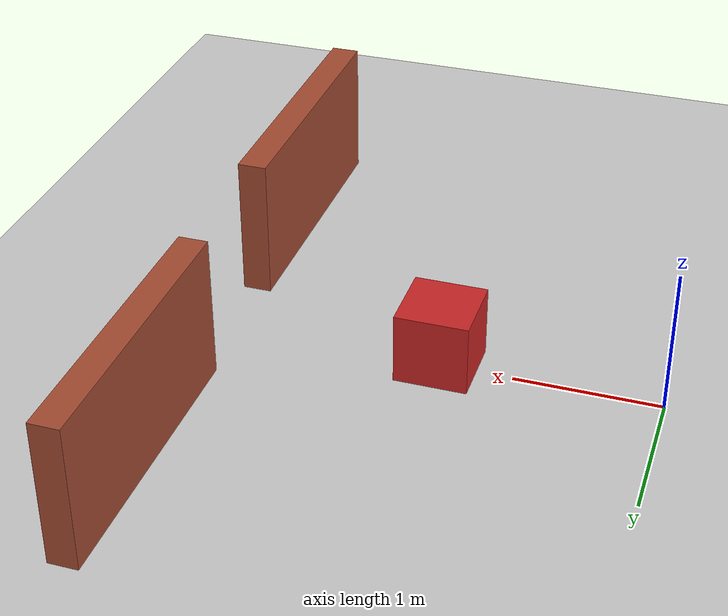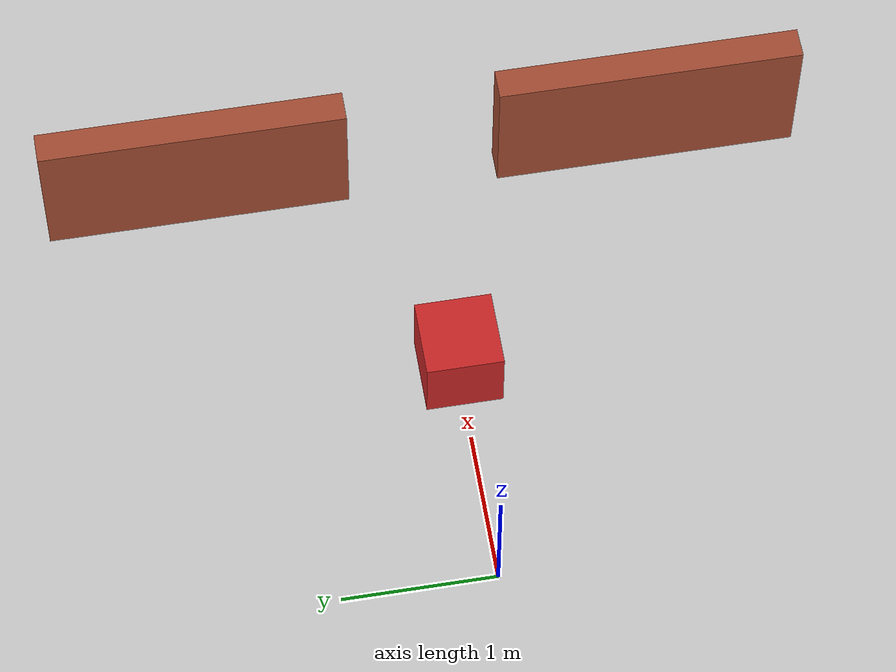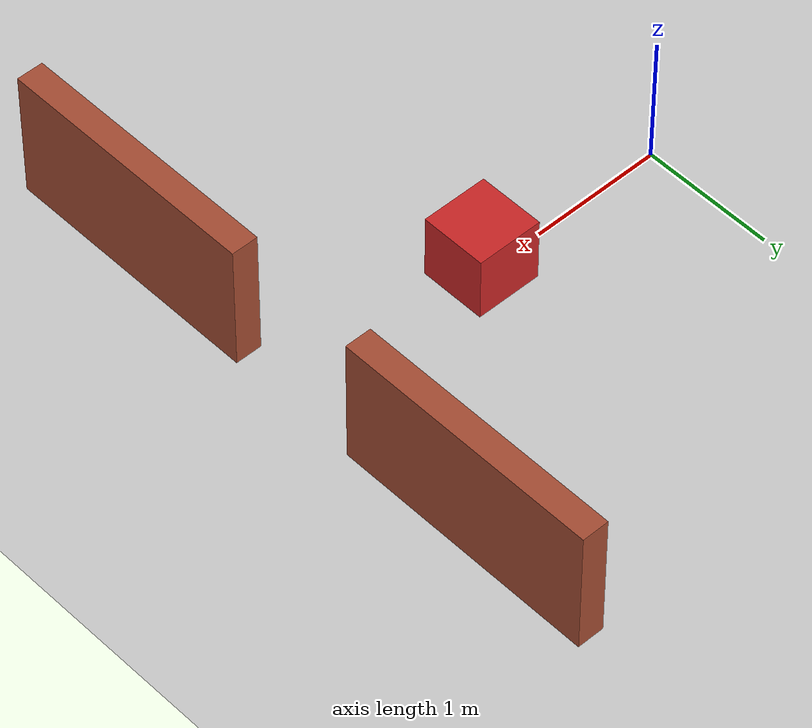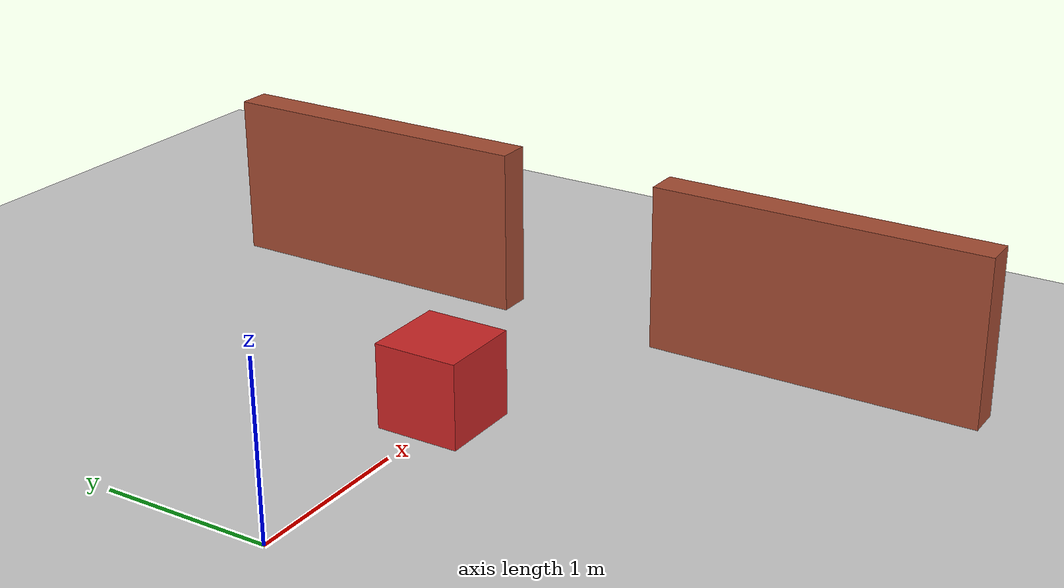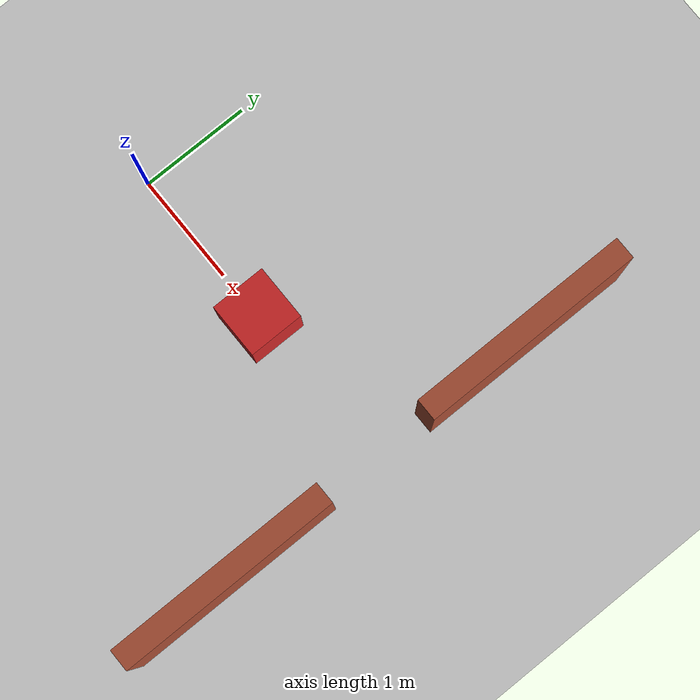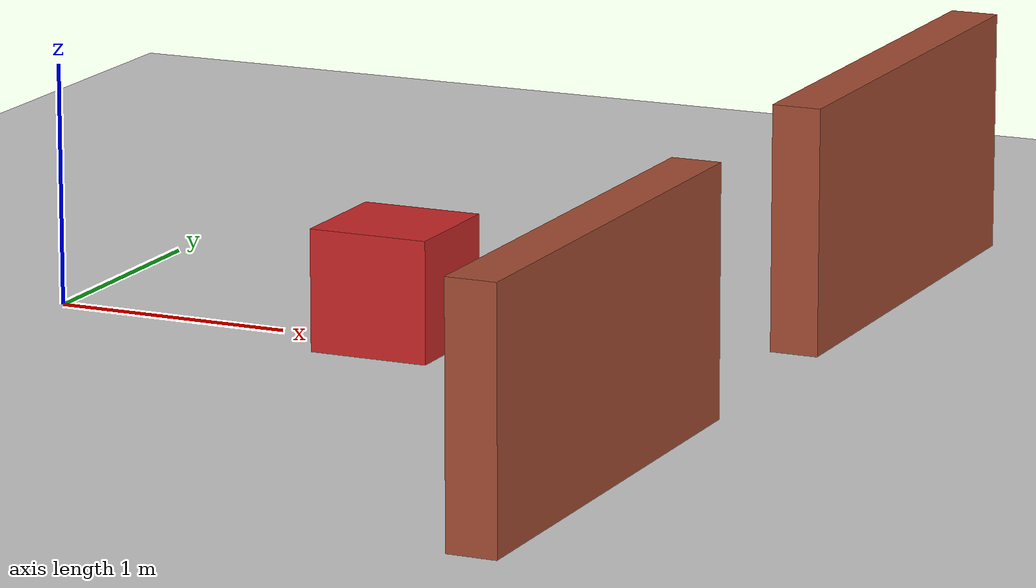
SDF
<?xml version="1.0" ?>
<sdf version="1.6">
  <world name="mobile_world">
    <include>
      <uri>model://sun</uri>
    </include>
    <include>
      <uri>model://ground_plane</uri>
    </include>

    <model name="wall_left">
      <pose>3.0 1.5 0.5 0 0 0</pose>
      <static>true</static>
      <link name="link">
        <collision name="collision">
          <geometry>
            <box>
              <size>0.2 2.0 1.0</size>
            </box>
          </geometry>
        </collision>
        <visual name="visual">
          <geometry>
            <box>
              <size>0.2 2.0 1.0</size>
            </box>
          </geometry>
          <material>
            <script>
              <uri>file://media/materials/scripts/gazebo.material</uri>
              <name>Gazebo/Bricks</name>
            </script>
          </material>
        </visual>
      </link>
    </model>

    <model name="wall_right">
      <pose>3.0 -1.5 0.5 0 0 0</pose>
      <static>true</static>
      <link name="link">
        <collision name="collision">
          <geometry>
            <box>
              <size>0.2 2.0 1.0</size>
            </box>
          </geometry>
        </collision>
        <visual name="visual">
          <geometry>
            <box>
              <size>0.2 2.0 1.0</size>
            </box>
          </geometry>
          <material>
            <script>
              <uri>file://media/materials/scripts/gazebo.material</uri>
              <name>Gazebo/Bricks</name>
            </script>
          </material>
        </visual>
      </link>
    </model>

    <model name="obstacle1">
      <pose>1.5 0.0 0.25 0 0 0</pose>
      <static>true</static>
      <link name="link">
        <collision name="collision">
          <geometry>
            <box>
              <size>0.5 0.5 0.5</size>
            </box>
          </geometry>
        </collision>
        <visual name="visual">
          <geometry>
            <box>
              <size>0.5 0.5 0.5</size>
            </box>
          </geometry>
          <material>
            <script>
              <uri>file://media/materials/scripts/gazebo.material</uri>
              <name>Gazebo/Red</name>
            </script>
          </material>
        </visual>
      </link>
    </model>

  </world>
</sdf>
